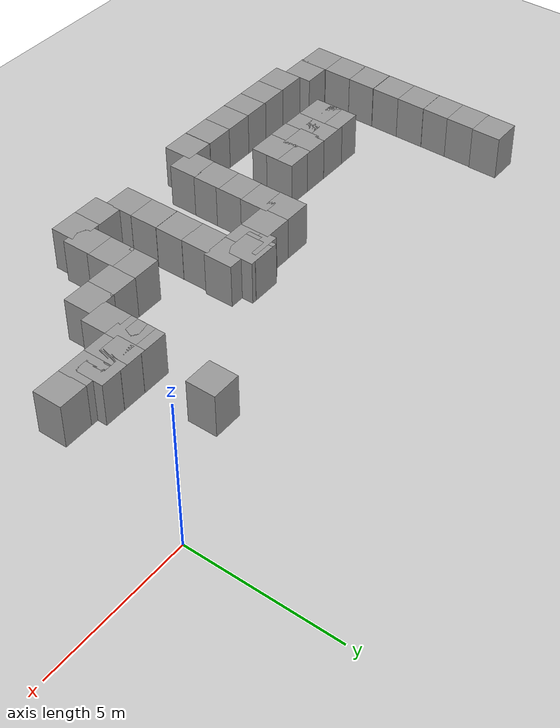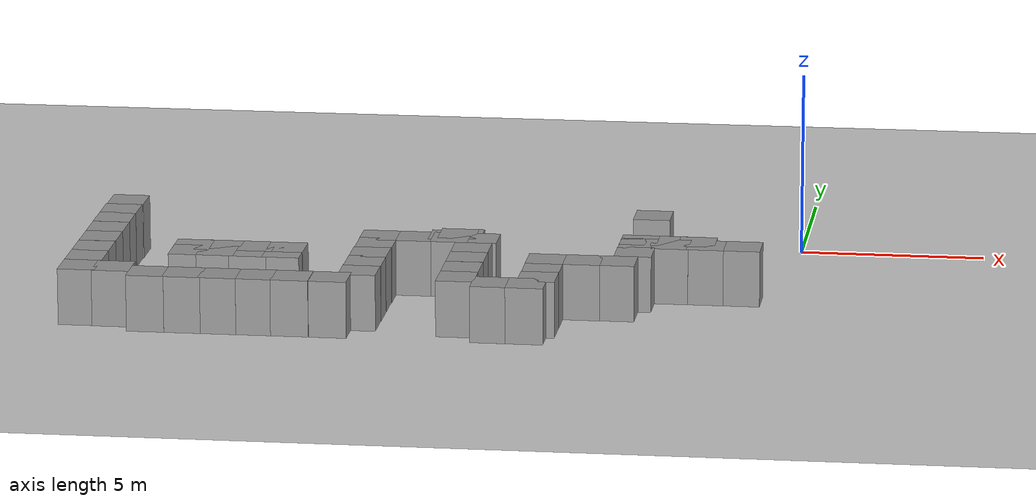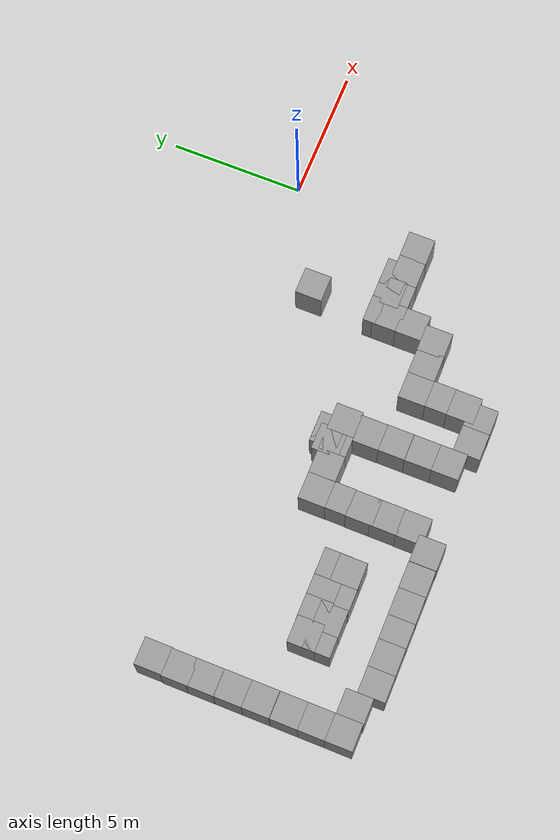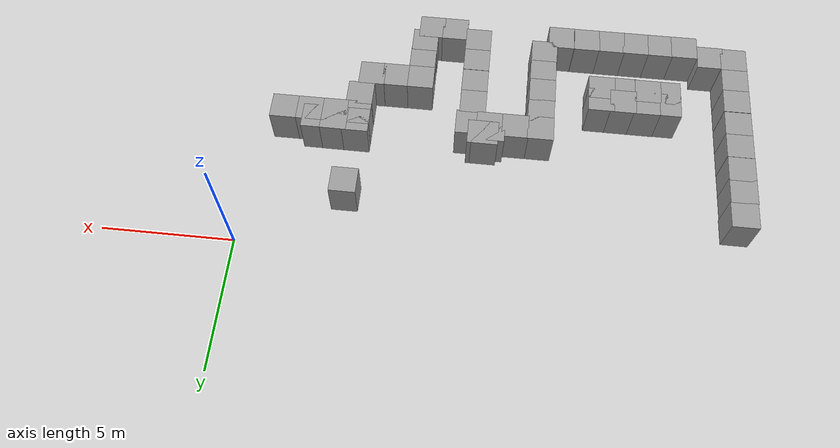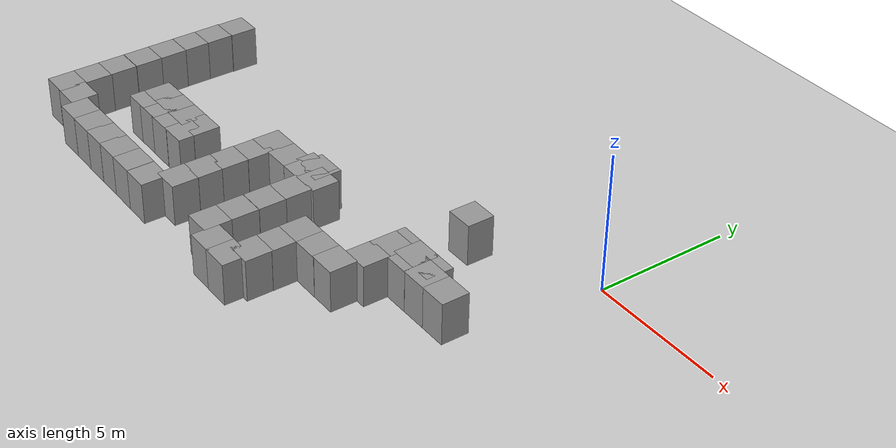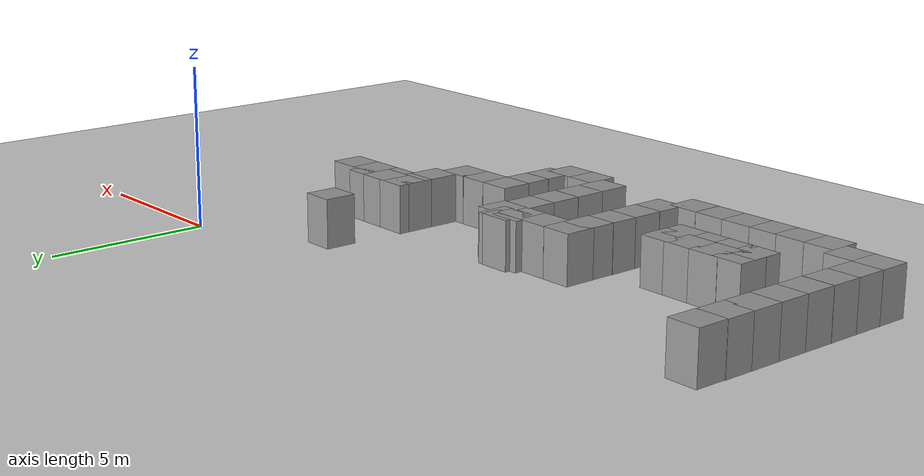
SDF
<sdf version="1.4">
 <world name="default">
  <model name="ground_plane">
   <static>1</static>
   <link name="link">
    <collision name="collision">
     <geometry><plane><normal>0 0 1</normal><size>100 100</size></plane></geometry>
     <surface><friction><ode><mu>100</mu><mu2>50</mu2></ode></friction></surface>
    </collision>
    <visual name="visual">
     <cast_shadows>0</cast_shadows>
     <geometry><plane><normal>0 0 1</normal><size>100 100</size></plane></geometry>
     <material>
      <script><uri>file://media/materials/scripts/gazebo.material</uri><name>Gazebo/Grey</name></script>
     </material>
    </visual>
    <velocity_decay><linear>0</linear><angular>0</angular></velocity_decay>
   </link>
  </model>
  <model name="unit_box_8">
   <pose>-3.98464 -4.80746 0.5 0 0 -0.000671</pose>
   <static>1</static>
   <link name="link">
    <inertial>
     <mass>1</mass>
     <inertia><ixx>1</ixx><ixy>0</ixy><ixz>0</ixz><iyy>1</iyy><iyz>0</iyz><izz>1</izz></inertia>
    </inertial>
    <collision name="collision"><geometry><box><size>1 1 2</size></box></geometry></collision>
    <visual name="visual">
     <geometry><box><size>1 1 2</size></box></geometry>
     <material>
      <script><uri>file://media/materials/scripts/gazebo.material</uri><name>Gazebo/Grey</name></script>
     </material>
    </visual>
    <velocity_decay><linear>0</linear><angular>0</angular></velocity_decay>
   </link>
   <static>0</static>
  </model>
  <model name="unit_box_13">
   <pose>-9.04735 -5.12782 0.5 0 0 -0.000581</pose>
   <static>1</static>
   <link name="link">
    <inertial>
     <mass>1</mass>
     <inertia><ixx>1</ixx><ixy>0</ixy><ixz>0</ixz><iyy>1</iyy><iyz>0</iyz><izz>1</izz></inertia>
    </inertial>
    <collision name="collision"><geometry><box><size>1 1 2</size></box></geometry></collision>
    <visual name="visual">
     <geometry><box><size>1 1 2</size></box></geometry>
     <material>
      <script><uri>file://media/materials/scripts/gazebo.material</uri><name>Gazebo/Grey</name></script>
     </material>
    </visual>
    <velocity_decay><linear>0</linear><angular>0</angular></velocity_decay>
   </link>
   <static>0</static>
  </model>
  <model name="unit_box_15">
   <pose>-18.4176 -4.09266 0.5 0 0 -3.9e-05</pose>
   <static>1</static>
   <link name="link">
    <inertial>
     <mass>1</mass>
     <inertia><ixx>1</ixx><ixy>0</ixy><ixz>0</ixz><iyy>1</iyy><iyz>0</iyz><izz>1</izz></inertia>
    </inertial>
    <collision name="collision"><geometry><box><size>1 1 2</size></box></geometry></collision>
    <visual name="visual">
     <geometry><box><size>1 1 2</size></box></geometry>
     <material>
      <script><uri>file://media/materials/scripts/gazebo.material</uri><name>Gazebo/Grey</name></script>
     </material>
    </visual>
    <velocity_decay><linear>0</linear><angular>0</angular></velocity_decay>
   </link>
   <static>0</static>
  </model>
  <model name="unit_box_17">
   <pose>-12.6647 -9.4969 0.5 0 0 -1.9e-05</pose>
   <static>1</static>
   <link name="link">
    <inertial>
     <mass>1</mass>
     <inertia><ixx>1</ixx><ixy>0</ixy><ixz>0</ixz><iyy>1</iyy><iyz>0</iyz><izz>1</izz></inertia>
    </inertial>
    <collision name="collision"><geometry><box><size>1 1 2</size></box></geometry></collision>
    <visual name="visual">
     <geometry><box><size>1 1 2</size></box></geometry>
     <material>
      <script><uri>file://media/materials/scripts/gazebo.material</uri><name>Gazebo/Grey</name></script>
     </material>
    </visual>
    <velocity_decay><linear>0</linear><angular>0</angular></velocity_decay>
   </link>
   <static>0</static>
  </model>
  <model name="unit_box_22">
   <pose>-3.88829 -2.16624 0.5 0 0 -1.2e-05</pose>
   <static>1</static>
   <link name="link">
    <inertial>
     <mass>1</mass>
     <inertia><ixx>1</ixx><ixy>0</ixy><ixz>0</ixz><iyy>1</iyy><iyz>0</iyz><izz>1</izz></inertia>
    </inertial>
    <collision name="collision"><geometry><box><size>1 1 2</size></box></geometry></collision>
    <visual name="visual">
     <geometry><box><size>1 1 2</size></box></geometry>
     <material>
      <script><uri>file://media/materials/scripts/gazebo.material</uri><name>Gazebo/Grey</name></script>
     </material>
    </visual>
    <velocity_decay><linear>0</linear><angular>0</angular></velocity_decay>
   </link>
   <static>0</static>
  </model>
  <model name="unit_box_23">
   <pose>-8.35425 -7.06216 0.5 0 0 -1e-05</pose>
   <static>1</static>
   <link name="link">
    <inertial>
     <mass>1</mass>
     <inertia><ixx>1</ixx><ixy>0</ixy><ixz>0</ixz><iyy>1</iyy><iyz>0</iyz><izz>1</izz></inertia>
    </inertial>
    <collision name="collision"><geometry><box><size>1 1 2</size></box></geometry></collision>
    <visual name="visual">
     <geometry><box><size>1 1 2</size></box></geometry>
     <material>
      <script><uri>file://media/materials/scripts/gazebo.material</uri><name>Gazebo/Grey</name></script>
     </material>
    </visual>
    <velocity_decay><linear>0</linear><angular>0</angular></velocity_decay>
   </link>
   <static>0</static>
  </model>
  <model name="unit_box_24">
   <pose>-3.98781 -5.14429 0.5 0 0 -1.4e-05</pose>
   <static>1</static>
   <link name="link">
    <inertial>
     <mass>1</mass>
     <inertia><ixx>1</ixx><ixy>0</ixy><ixz>0</ixz><iyy>1</iyy><iyz>0</iyz><izz>1</izz></inertia>
    </inertial>
    <collision name="collision"><geometry><box><size>1 1 2</size></box></geometry></collision>
    <visual name="visual">
     <geometry><box><size>1 1 2</size></box></geometry>
     <material>
      <script><uri>file://media/materials/scripts/gazebo.material</uri><name>Gazebo/Grey</name></script>
     </material>
    </visual>
    <velocity_decay><linear>0</linear><angular>0</angular></velocity_decay>
   </link>
   <static>0</static>
  </model>
  <model name="unit_box_25">
   <pose>-5.25514 -7.02031 0.5 0 0 -1.5e-05</pose>
   <static>1</static>
   <link name="link">
    <inertial>
     <mass>1</mass>
     <inertia><ixx>1</ixx><ixy>0</ixy><ixz>0</ixz><iyy>1</iyy><iyz>0</iyz><izz>1</izz></inertia>
    </inertial>
    <collision name="collision"><geometry><box><size>1 1 2</size></box></geometry></collision>
    <visual name="visual">
     <geometry><box><size>1 1 2</size></box></geometry>
     <material>
      <script><uri>file://media/materials/scripts/gazebo.material</uri><name>Gazebo/Grey</name></script>
     </material>
    </visual>
    <velocity_decay><linear>0</linear><angular>0</angular></velocity_decay>
   </link>
   <static>0</static>
  </model>
  <model name="unit_box_26">
   <pose>-3.99313 -6.04218 0.5 0 0 -1.1e-05</pose>
   <static>1</static>
   <link name="link">
    <inertial>
     <mass>1</mass>
     <inertia><ixx>1</ixx><ixy>0</ixy><ixz>0</ixz><iyy>1</iyy><iyz>0</iyz><izz>1</izz></inertia>
    </inertial>
    <collision name="collision"><geometry><box><size>1 1 2</size></box></geometry></collision>
    <visual name="visual">
     <geometry><box><size>1 1 2</size></box></geometry>
     <material>
      <script><uri>file://media/materials/scripts/gazebo.material</uri><name>Gazebo/Grey</name></script>
     </material>
    </visual>
    <velocity_decay><linear>0</linear><angular>0</angular></velocity_decay>
   </link>
   <static>0</static>
  </model>
  <model name="unit_box_27">
   <pose>-6.24567 -7.02385 0.5 0 0 -1e-05</pose>
   <static>1</static>
   <link name="link">
    <inertial>
     <mass>1</mass>
     <inertia><ixx>1</ixx><ixy>0</ixy><ixz>0</ixz><iyy>1</iyy><iyz>0</iyz><izz>1</izz></inertia>
    </inertial>
    <collision name="collision"><geometry><box><size>1 1 2</size></box></geometry></collision>
    <visual name="visual">
     <geometry><box><size>1 1 2</size></box></geometry>
     <material>
      <script><uri>file://media/materials/scripts/gazebo.material</uri><name>Gazebo/Grey</name></script>
     </material>
    </visual>
    <velocity_decay><linear>0</linear><angular>0</angular></velocity_decay>
   </link>
   <static>0</static>
  </model>
  <model name="unit_box_28">
   <pose>-3.10006 -5.14863 0.5 0 0 -1.1e-05</pose>
   <static>1</static>
   <link name="link">
    <inertial>
     <mass>1</mass>
     <inertia><ixx>1</ixx><ixy>0</ixy><ixz>0</ixz><iyy>1</iyy><iyz>0</iyz><izz>1</izz></inertia>
    </inertial>
    <collision name="collision"><geometry><box><size>1 1 2</size></box></geometry></collision>
    <visual name="visual">
     <geometry><box><size>1 1 2</size></box></geometry>
     <material>
      <script><uri>file://media/materials/scripts/gazebo.material</uri><name>Gazebo/Grey</name></script>
     </material>
    </visual>
    <velocity_decay><linear>0</linear><angular>0</angular></velocity_decay>
   </link>
   <static>0</static>
  </model>
  <model name="unit_box_35">
   <pose>-4.34133 -7.01322 0.5 0 0 -1.5e-05</pose>
   <static>1</static>
   <link name="link">
    <inertial>
     <mass>1</mass>
     <inertia><ixx>1</ixx><ixy>0</ixy><ixz>0</ixz><iyy>1</iyy><iyz>0</iyz><izz>1</izz></inertia>
    </inertial>
    <collision name="collision"><geometry><box><size>1 1 2</size></box></geometry></collision>
    <visual name="visual">
     <geometry><box><size>1 1 2</size></box></geometry>
     <material>
      <script><uri>file://media/materials/scripts/gazebo.material</uri><name>Gazebo/Grey</name></script>
     </material>
    </visual>
    <velocity_decay><linear>0</linear><angular>0</angular></velocity_decay>
   </link>
   <static>0</static>
  </model>
  <model name="unit_box_36">
   <pose>-8.74356 -4.72467 0.5 0 0 -1.5e-05</pose>
   <static>1</static>
   <link name="link">
    <inertial>
     <mass>1</mass>
     <inertia><ixx>1</ixx><ixy>0</ixy><ixz>0</ixz><iyy>1</iyy><iyz>0</iyz><izz>1</izz></inertia>
    </inertial>
    <collision name="collision"><geometry><box><size>1 1 2</size></box></geometry></collision>
    <visual name="visual">
     <geometry><box><size>1 1 2</size></box></geometry>
     <material>
      <script><uri>file://media/materials/scripts/gazebo.material</uri><name>Gazebo/Grey</name></script>
     </material>
    </visual>
    <velocity_decay><linear>0</linear><angular>0</angular></velocity_decay>
   </link>
   <static>0</static>
  </model>
  <model name="unit_box_37">
   <pose>-2.15261 -5.14539 0.5 0 0 -1.4e-05</pose>
   <static>1</static>
   <link name="link">
    <inertial>
     <mass>1</mass>
     <inertia><ixx>1</ixx><ixy>0</ixy><ixz>0</ixz><iyy>1</iyy><iyz>0</iyz><izz>1</izz></inertia>
    </inertial>
    <collision name="collision"><geometry><box><size>1 1 2</size></box></geometry></collision>
    <visual name="visual">
     <geometry><box><size>1 1 2</size></box></geometry>
     <material>
      <script><uri>file://media/materials/scripts/gazebo.material</uri><name>Gazebo/Grey</name></script>
     </material>
    </visual>
    <velocity_decay><linear>0</linear><angular>0</angular></velocity_decay>
   </link>
   <static>0</static>
  </model>
  <model name="unit_box_42">
   <pose>-18.4169 -3.16567 0.5 0 -0 0.001796</pose>
   <static>1</static>
   <link name="link">
    <inertial>
     <mass>1</mass>
     <inertia><ixx>1</ixx><ixy>0</ixy><ixz>0</ixz><iyy>1</iyy><iyz>0</iyz><izz>1</izz></inertia>
    </inertial>
    <collision name="collision"><geometry><box><size>1 1 2</size></box></geometry></collision>
    <visual name="visual">
     <geometry><box><size>1 1 2</size></box></geometry>
     <material>
      <script><uri>file://media/materials/scripts/gazebo.material</uri><name>Gazebo/Grey</name></script>
     </material>
    </visual>
    <velocity_decay><linear>0</linear><angular>0</angular></velocity_decay>
   </link>
   <static>0</static>
  </model>
  <model name="unit_box_43">
   <pose>-18.3967 -2.18667 0.5 0 -0 0.001375</pose>
   <static>1</static>
   <link name="link">
    <inertial>
     <mass>1</mass>
     <inertia><ixx>1</ixx><ixy>0</ixy><ixz>0</ixz><iyy>1</iyy><iyz>0</iyz><izz>1</izz></inertia>
    </inertial>
    <collision name="collision"><geometry><box><size>1 1 2</size></box></geometry></collision>
    <visual name="visual">
     <geometry><box><size>1 1 2</size></box></geometry>
     <material>
      <script><uri>file://media/materials/scripts/gazebo.material</uri><name>Gazebo/Grey</name></script>
     </material>
    </visual>
    <velocity_decay><linear>0</linear><angular>0</angular></velocity_decay>
   </link>
   <static>0</static>
  </model>
  <model name="unit_box_223">
   <pose>-14.9887 -6.66241 0.5 0 -0 1e-06</pose>
   <static>1</static>
   <link name="link">
    <inertial>
     <mass>1</mass>
     <inertia><ixx>1</ixx><ixy>0</ixy><ixz>0</ixz><iyy>1</iyy><iyz>0</iyz><izz>1</izz></inertia>
    </inertial>
    <collision name="collision"><geometry><box><size>1 1 2</size></box></geometry></collision>
    <visual name="visual">
     <geometry><box><size>1 1 2</size></box></geometry>
     <material>
      <script><uri>file://media/materials/scripts/gazebo.material</uri><name>Gazebo/Grey</name></script>
     </material>
    </visual>
    <velocity_decay><linear>0</linear><angular>0</angular></velocity_decay>
   </link>
   <static>0</static>
  </model>
  <model name="unit_box_227">
   <pose>-10.9783 -5.13219 0.5 0 0 -4e-06</pose>
   <static>1</static>
   <link name="link">
    <inertial>
     <mass>1</mass>
     <inertia><ixx>1</ixx><ixy>0</ixy><ixz>0</ixz><iyy>1</iyy><iyz>0</iyz><izz>1</izz></inertia>
    </inertial>
    <collision name="collision"><geometry><box><size>1 1 2</size></box></geometry></collision>
    <visual name="visual">
     <geometry><box><size>1 1 2</size></box></geometry>
     <material>
      <script><uri>file://media/materials/scripts/gazebo.material</uri><name>Gazebo/Grey</name></script>
     </material>
    </visual>
    <velocity_decay><linear>0</linear><angular>0</angular></velocity_decay>
   </link>
   <static>0</static>
  </model>
  <model name="unit_box_228">
   <pose>-10.9701 -5.91289 0.5 0 0 -4e-06</pose>
   <static>1</static>
   <link name="link">
    <inertial>
     <mass>1</mass>
     <inertia><ixx>1</ixx><ixy>0</ixy><ixz>0</ixz><iyy>1</iyy><iyz>0</iyz><izz>1</izz></inertia>
    </inertial>
    <collision name="collision"><geometry><box><size>1 1 2</size></box></geometry></collision>
    <visual name="visual">
     <geometry><box><size>1 1 2</size></box></geometry>
     <material>
      <script><uri>file://media/materials/scripts/gazebo.material</uri><name>Gazebo/Grey</name></script>
     </material>
    </visual>
    <velocity_decay><linear>0</linear><angular>0</angular></velocity_decay>
   </link>
   <static>0</static>
  </model>
  <model name="unit_box_229">
   <pose>-10.9848 -7.77589 0.5 0 0 -3e-06</pose>
   <static>1</static>
   <link name="link">
    <inertial>
     <mass>1</mass>
     <inertia><ixx>1</ixx><ixy>0</ixy><ixz>0</ixz><iyy>1</iyy><iyz>0</iyz><izz>1</izz></inertia>
    </inertial>
    <collision name="collision"><geometry><box><size>1 1 2</size></box></geometry></collision>
    <visual name="visual">
     <geometry><box><size>1 1 2</size></box></geometry>
     <material>
      <script><uri>file://media/materials/scripts/gazebo.material</uri><name>Gazebo/Grey</name></script>
     </material>
    </visual>
    <velocity_decay><linear>0</linear><angular>0</angular></velocity_decay>
   </link>
   <static>0</static>
  </model>
  <model name="unit_box_232">
   <pose>-10.0212 -5.12862 0.5 0 0 -5e-06</pose>
   <static>1</static>
   <link name="link">
    <inertial>
     <mass>1</mass>
     <inertia><ixx>1</ixx><ixy>0</ixy><ixz>0</ixz><iyy>1</iyy><iyz>0</iyz><izz>1</izz></inertia>
    </inertial>
    <collision name="collision"><geometry><box><size>1 1 2</size></box></geometry></collision>
    <visual name="visual">
     <geometry><box><size>1 1 2</size></box></geometry>
     <material>
      <script><uri>file://media/materials/scripts/gazebo.material</uri><name>Gazebo/Grey</name></script>
     </material>
    </visual>
    <velocity_decay><linear>0</linear><angular>0</angular></velocity_decay>
   </link>
   <static>0</static>
  </model>
  <model name="unit_box_233">
   <pose>-8.2589 -5.12275 0.5 0 0 -5e-06</pose>
   <static>1</static>
   <link name="link">
    <inertial>
     <mass>1</mass>
     <inertia><ixx>1</ixx><ixy>0</ixy><ixz>0</ixz><iyy>1</iyy><iyz>0</iyz><izz>1</izz></inertia>
    </inertial>
    <collision name="collision"><geometry><box><size>1 1 2</size></box></geometry></collision>
    <visual name="visual">
     <geometry><box><size>1 1 2</size></box></geometry>
     <material>
      <script><uri>file://media/materials/scripts/gazebo.material</uri><name>Gazebo/Grey</name></script>
     </material>
    </visual>
    <velocity_decay><linear>0</linear><angular>0</angular></velocity_decay>
   </link>
   <static>0</static>
  </model>
  <model name="unit_box_234">
   <pose>-8.36081 -6.08064 0.5 0 0 -5e-06</pose>
   <static>1</static>
   <link name="link">
    <inertial>
     <mass>1</mass>
     <inertia><ixx>1</ixx><ixy>0</ixy><ixz>0</ixz><iyy>1</iyy><iyz>0</iyz><izz>1</izz></inertia>
    </inertial>
    <collision name="collision"><geometry><box><size>1 1 2</size></box></geometry></collision>
    <visual name="visual">
     <geometry><box><size>1 1 2</size></box></geometry>
     <material>
      <script><uri>file://media/materials/scripts/gazebo.material</uri><name>Gazebo/Grey</name></script>
     </material>
    </visual>
    <velocity_decay><linear>0</linear><angular>0</angular></velocity_decay>
   </link>
   <static>0</static>
  </model>
  <model name="unit_box_235">
   <pose>-15.7894 -6.67048 0.5 0 -0 1e-06</pose>
   <static>1</static>
   <link name="link">
    <inertial>
     <mass>1</mass>
     <inertia><ixx>1</ixx><ixy>0</ixy><ixz>0</ixz><iyy>1</iyy><iyz>0</iyz><izz>1</izz></inertia>
    </inertial>
    <collision name="collision"><geometry><box><size>1 1 2</size></box></geometry></collision>
    <visual name="visual">
     <geometry><box><size>1 1 2</size></box></geometry>
     <material>
      <script><uri>file://media/materials/scripts/gazebo.material</uri><name>Gazebo/Grey</name></script>
     </material>
    </visual>
    <velocity_decay><linear>0</linear><angular>0</angular></velocity_decay>
   </link>
   <static>0</static>
  </model>
  <model name="unit_box_236">
   <pose>-13.2667 -7.23484 0.5 0 -0 1e-06</pose>
   <static>1</static>
   <link name="link">
    <inertial>
     <mass>1</mass>
     <inertia><ixx>1</ixx><ixy>0</ixy><ixz>0</ixz><iyy>1</iyy><iyz>0</iyz><izz>1</izz></inertia>
    </inertial>
    <collision name="collision"><geometry><box><size>1 1 2</size></box></geometry></collision>
    <visual name="visual">
     <geometry><box><size>1 1 2</size></box></geometry>
     <material>
      <script><uri>file://media/materials/scripts/gazebo.material</uri><name>Gazebo/Grey</name></script>
     </material>
    </visual>
    <velocity_decay><linear>0</linear><angular>0</angular></velocity_decay>
   </link>
   <static>0</static>
  </model>
  <model name="unit_box_237">
   <pose>-8.89915 -4.72063 0.5 0 -0 1e-06</pose>
   <static>1</static>
   <link name="link">
    <inertial>
     <mass>1</mass>
     <inertia><ixx>1</ixx><ixy>0</ixy><ixz>0</ixz><iyy>1</iyy><iyz>0</iyz><izz>1</izz></inertia>
    </inertial>
    <collision name="collision"><geometry><box><size>1 1 2</size></box></geometry></collision>
    <visual name="visual">
     <geometry><box><size>1 1 2</size></box></geometry>
     <material>
      <script><uri>file://media/materials/scripts/gazebo.material</uri><name>Gazebo/Grey</name></script>
     </material>
    </visual>
    <velocity_decay><linear>0</linear><angular>0</angular></velocity_decay>
   </link>
   <static>0</static>
  </model>
  <model name="unit_box_238">
   <pose>-2.42621 -4.81701 0.5 0 -0 2e-06</pose>
   <static>1</static>
   <link name="link">
    <inertial>
     <mass>1</mass>
     <inertia><ixx>1</ixx><ixy>0</ixy><ixz>0</ixz><iyy>1</iyy><iyz>0</iyz><izz>1</izz></inertia>
    </inertial>
    <collision name="collision"><geometry><box><size>1 1 2</size></box></geometry></collision>
    <visual name="visual">
     <geometry><box><size>1 1 2</size></box></geometry>
     <material>
      <script><uri>file://media/materials/scripts/gazebo.material</uri><name>Gazebo/Grey</name></script>
     </material>
    </visual>
    <velocity_decay><linear>0</linear><angular>0</angular></velocity_decay>
   </link>
   <static>0</static>
  </model>
  <model name="unit_box_239">
   <pose>-9.13733 -4.88746 0.499999 3e-06 -0 2e-06</pose>
   <static>1</static>
   <link name="link">
    <inertial>
     <mass>1</mass>
     <inertia><ixx>1</ixx><ixy>0</ixy><ixz>0</ixz><iyy>1</iyy><iyz>0</iyz><izz>1</izz></inertia>
    </inertial>
    <collision name="collision"><geometry><box><size>1 1 2</size></box></geometry></collision>
    <visual name="visual">
     <geometry><box><size>1 1 2</size></box></geometry>
     <material>
      <script><uri>file://media/materials/scripts/gazebo.material</uri><name>Gazebo/Grey</name></script>
     </material>
    </visual>
    <velocity_decay><linear>0</linear><angular>0</angular></velocity_decay>
   </link>
   <static>0</static>
  </model>
  <model name="unit_box_240">
   <pose>-11.6544 -9.50215 0.5 0 0 -3e-06</pose>
   <static>1</static>
   <link name="link">
    <inertial>
     <mass>1</mass>
     <inertia><ixx>1</ixx><ixy>0</ixy><ixz>0</ixz><iyy>1</iyy><iyz>0</iyz><izz>1</izz></inertia>
    </inertial>
    <collision name="collision"><geometry><box><size>1 1 2</size></box></geometry></collision>
    <visual name="visual">
     <geometry><box><size>1 1 2</size></box></geometry>
     <material>
      <script><uri>file://media/materials/scripts/gazebo.material</uri><name>Gazebo/Grey</name></script>
     </material>
    </visual>
    <velocity_decay><linear>0</linear><angular>0</angular></velocity_decay>
   </link>
   <static>0</static>
  </model>
  <model name="unit_box_246">
   <pose>-18.4134 -5.09618 0.5 0 0 -3e-06</pose>
   <static>1</static>
   <link name="link">
    <inertial>
     <mass>1</mass>
     <inertia><ixx>1</ixx><ixy>0</ixy><ixz>0</ixz><iyy>1</iyy><iyz>0</iyz><izz>1</izz></inertia>
    </inertial>
    <collision name="collision"><geometry><box><size>1 1 2</size></box></geometry></collision>
    <visual name="visual">
     <geometry><box><size>1 1 2</size></box></geometry>
     <material>
      <script><uri>file://media/materials/scripts/gazebo.material</uri><name>Gazebo/Grey</name></script>
     </material>
    </visual>
    <velocity_decay><linear>0</linear><angular>0</angular></velocity_decay>
   </link>
   <static>0</static>
  </model>
  <model name="unit_box_247">
   <pose>-18.412 -6.09549 0.5 0 0 -1.4e-05</pose>
   <static>1</static>
   <link name="link">
    <inertial>
     <mass>1</mass>
     <inertia><ixx>1</ixx><ixy>0</ixy><ixz>0</ixz><iyy>1</iyy><iyz>0</iyz><izz>1</izz></inertia>
    </inertial>
    <collision name="collision"><geometry><box><size>1 1 2</size></box></geometry></collision>
    <visual name="visual">
     <geometry><box><size>1 1 2</size></box></geometry>
     <material>
      <script><uri>file://media/materials/scripts/gazebo.material</uri><name>Gazebo/Grey</name></script>
     </material>
    </visual>
    <velocity_decay><linear>0</linear><angular>0</angular></velocity_decay>
   </link>
   <static>0</static>
  </model>
  <model name="unit_box_248">
   <pose>-18.4125 -7.10923 0.5 0 0 -1.6e-05</pose>
   <static>1</static>
   <link name="link">
    <inertial>
     <mass>1</mass>
     <inertia><ixx>1</ixx><ixy>0</ixy><ixz>0</ixz><iyy>1</iyy><iyz>0</iyz><izz>1</izz></inertia>
    </inertial>
    <collision name="collision"><geometry><box><size>1 1 2</size></box></geometry></collision>
    <visual name="visual">
     <geometry><box><size>1 1 2</size></box></geometry>
     <material>
      <script><uri>file://media/materials/scripts/gazebo.material</uri><name>Gazebo/Grey</name></script>
     </material>
    </visual>
    <velocity_decay><linear>0</linear><angular>0</angular></velocity_decay>
   </link>
   <static>0</static>
  </model>
  <model name="unit_box_249">
   <pose>-18.4108 -8.0833 0.5 0 0 -1.3e-05</pose>
   <static>1</static>
   <link name="link">
    <inertial>
     <mass>1</mass>
     <inertia><ixx>1</ixx><ixy>0</ixy><ixz>0</ixz><iyy>1</iyy><iyz>0</iyz><izz>1</izz></inertia>
    </inertial>
    <collision name="collision"><geometry><box><size>1 1 2</size></box></geometry></collision>
    <visual name="visual">
     <geometry><box><size>1 1 2</size></box></geometry>
     <material>
      <script><uri>file://media/materials/scripts/gazebo.material</uri><name>Gazebo/Grey</name></script>
     </material>
    </visual>
    <velocity_decay><linear>0</linear><angular>0</angular></velocity_decay>
   </link>
   <static>0</static>
  </model>
  <model name="unit_box_251">
   <pose>-18.4112 -9.08074 0.5 1.61559e-27 -1e-06 -1.2e-05</pose>
   <static>1</static>
   <link name="link">
    <inertial>
     <mass>1</mass>
     <inertia><ixx>1</ixx><ixy>0</ixy><ixz>0</ixz><iyy>1</iyy><iyz>0</iyz><izz>1</izz></inertia>
    </inertial>
    <collision name="collision"><geometry><box><size>1 1 2</size></box></geometry></collision>
    <visual name="visual">
     <geometry><box><size>1 1 2</size></box></geometry>
     <material>
      <script><uri>file://media/materials/scripts/gazebo.material</uri><name>Gazebo/Grey</name></script>
     </material>
    </visual>
    <velocity_decay><linear>0</linear><angular>0</angular></velocity_decay>
   </link>
   <static>0</static>
  </model>
  <model name="unit_box_252">
   <pose>-17.5001 -9.10227 0.5 0 0 -1.1e-05</pose>
   <static>1</static>
   <link name="link">
    <inertial>
     <mass>1</mass>
     <inertia><ixx>1</ixx><ixy>0</ixy><ixz>0</ixz><iyy>1</iyy><iyz>0</iyz><izz>1</izz></inertia>
    </inertial>
    <collision name="collision"><geometry><box><size>1 1 2</size></box></geometry></collision>
    <visual name="visual">
     <geometry><box><size>1 1 2</size></box></geometry>
     <material>
      <script><uri>file://media/materials/scripts/gazebo.material</uri><name>Gazebo/Grey</name></script>
     </material>
    </visual>
    <velocity_decay><linear>0</linear><angular>0</angular></velocity_decay>
   </link>
   <static>0</static>
  </model>
  <model name="unit_box_253">
   <pose>-16.5026 -9.50142 0.5 0 0 -1e-05</pose>
   <static>1</static>
   <link name="link">
    <inertial>
     <mass>1</mass>
     <inertia><ixx>1</ixx><ixy>0</ixy><ixz>0</ixz><iyy>1</iyy><iyz>0</iyz><izz>1</izz></inertia>
    </inertial>
    <collision name="collision"><geometry><box><size>1 1 2</size></box></geometry></collision>
    <visual name="visual">
     <geometry><box><size>1 1 2</size></box></geometry>
     <material>
      <script><uri>file://media/materials/scripts/gazebo.material</uri><name>Gazebo/Grey</name></script>
     </material>
    </visual>
    <velocity_decay><linear>0</linear><angular>0</angular></velocity_decay>
   </link>
   <static>0</static>
  </model>
  <model name="unit_box_254">
   <pose>-15.5331 -9.49946 0.5 0 0 -1e-05</pose>
   <static>1</static>
   <link name="link">
    <inertial>
     <mass>1</mass>
     <inertia><ixx>1</ixx><ixy>0</ixy><ixz>0</ixz><iyy>1</iyy><iyz>0</iyz><izz>1</izz></inertia>
    </inertial>
    <collision name="collision"><geometry><box><size>1 1 2</size></box></geometry></collision>
    <visual name="visual">
     <geometry><box><size>1 1 2</size></box></geometry>
     <material>
      <script><uri>file://media/materials/scripts/gazebo.material</uri><name>Gazebo/Grey</name></script>
     </material>
    </visual>
    <velocity_decay><linear>0</linear><angular>0</angular></velocity_decay>
   </link>
   <static>0</static>
  </model>
  <model name="unit_box_255">
   <pose>-14.5846 -9.49887 0.5 0 0 -8e-06</pose>
   <static>1</static>
   <link name="link">
    <inertial>
     <mass>1</mass>
     <inertia><ixx>1</ixx><ixy>0</ixy><ixz>0</ixz><iyy>1</iyy><iyz>0</iyz><izz>1</izz></inertia>
    </inertial>
    <collision name="collision"><geometry><box><size>1 1 2</size></box></geometry></collision>
    <visual name="visual">
     <geometry><box><size>1 1 2</size></box></geometry>
     <material>
      <script><uri>file://media/materials/scripts/gazebo.material</uri><name>Gazebo/Grey</name></script>
     </material>
    </visual>
    <velocity_decay><linear>0</linear><angular>0</angular></velocity_decay>
   </link>
   <static>0</static>
  </model>
  <model name="unit_box_256">
   <pose>-13.6431 -9.49683 0.5 0 0 -7e-06</pose>
   <static>1</static>
   <link name="link">
    <inertial>
     <mass>1</mass>
     <inertia><ixx>1</ixx><ixy>0</ixy><ixz>0</ixz><iyy>1</iyy><iyz>0</iyz><izz>1</izz></inertia>
    </inertial>
    <collision name="collision"><geometry><box><size>1 1 2</size></box></geometry></collision>
    <visual name="visual">
     <geometry><box><size>1 1 2</size></box></geometry>
     <material>
      <script><uri>file://media/materials/scripts/gazebo.material</uri><name>Gazebo/Grey</name></script>
     </material>
    </visual>
    <velocity_decay><linear>0</linear><angular>0</angular></velocity_decay>
   </link>
   <static>0</static>
  </model>
  <model name="unit_box_257">
   <pose>-10.9942 -8.73874 0.5 0 0 -7e-06</pose>
   <static>1</static>
   <link name="link">
    <inertial>
     <mass>1</mass>
     <inertia><ixx>1</ixx><ixy>0</ixy><ixz>0</ixz><iyy>1</iyy><iyz>0</iyz><izz>1</izz></inertia>
    </inertial>
    <collision name="collision"><geometry><box><size>1 1 2</size></box></geometry></collision>
    <visual name="visual">
     <geometry><box><size>1 1 2</size></box></geometry>
     <material>
      <script><uri>file://media/materials/scripts/gazebo.material</uri><name>Gazebo/Grey</name></script>
     </material>
    </visual>
    <velocity_decay><linear>0</linear><angular>0</angular></velocity_decay>
   </link>
   <static>0</static>
  </model>
  <model name="unit_box_258">
   <pose>-10.9831 -6.88794 0.5 0 0 -5e-06</pose>
   <static>1</static>
   <link name="link">
    <inertial>
     <mass>1</mass>
     <inertia><ixx>1</ixx><ixy>0</ixy><ixz>0</ixz><iyy>1</iyy><iyz>0</iyz><izz>1</izz></inertia>
    </inertial>
    <collision name="collision"><geometry><box><size>1 1 2</size></box></geometry></collision>
    <visual name="visual">
     <geometry><box><size>1 1 2</size></box></geometry>
     <material>
      <script><uri>file://media/materials/scripts/gazebo.material</uri><name>Gazebo/Grey</name></script>
     </material>
    </visual>
    <velocity_decay><linear>0</linear><angular>0</angular></velocity_decay>
   </link>
   <static>0</static>
  </model>
  <model name="unit_box_259">
   <pose>-7.39068 -9.50966 0.5 0 0 -5e-06</pose>
   <static>1</static>
   <link name="link">
    <inertial>
     <mass>1</mass>
     <inertia><ixx>1</ixx><ixy>0</ixy><ixz>0</ixz><iyy>1</iyy><iyz>0</iyz><izz>1</izz></inertia>
    </inertial>
    <collision name="collision"><geometry><box><size>1 1 2</size></box></geometry></collision>
    <visual name="visual">
     <geometry><box><size>1 1 2</size></box></geometry>
     <material>
      <script><uri>file://media/materials/scripts/gazebo.material</uri><name>Gazebo/Grey</name></script>
     </material>
    </visual>
    <velocity_decay><linear>0</linear><angular>0</angular></velocity_decay>
   </link>
   <static>0</static>
  </model>
  <model name="unit_box_260">
   <pose>-8.35545 -8.06903 0.499989 -3e-06 -0 -7e-06</pose>
   <static>1</static>
   <link name="link">
    <inertial>
     <mass>1</mass>
     <inertia><ixx>1</ixx><ixy>0</ixy><ixz>0</ixz><iyy>1</iyy><iyz>0</iyz><izz>1</izz></inertia>
    </inertial>
    <collision name="collision"><geometry><box><size>1 1 2</size></box></geometry></collision>
    <visual name="visual">
     <geometry><box><size>1 1 2</size></box></geometry>
     <material>
      <script><uri>file://media/materials/scripts/gazebo.material</uri><name>Gazebo/Grey</name></script>
     </material>
    </visual>
    <velocity_decay><linear>0</linear><angular>0</angular></velocity_decay>
   </link>
   <static>0</static>
  </model>
  <model name="unit_box_261">
   <pose>-8.35299 -9.06152 0.500001 2e-06 3.23117e-27 -7e-06</pose>
   <static>1</static>
   <link name="link">
    <inertial>
     <mass>1</mass>
     <inertia><ixx>1</ixx><ixy>0</ixy><ixz>0</ixz><iyy>1</iyy><iyz>0</iyz><izz>1</izz></inertia>
    </inertial>
    <collision name="collision"><geometry><box><size>1 1 2</size></box></geometry></collision>
    <visual name="visual">
     <geometry><box><size>1 1 2</size></box></geometry>
     <material>
      <script><uri>file://media/materials/scripts/gazebo.material</uri><name>Gazebo/Grey</name></script>
     </material>
    </visual>
    <velocity_decay><linear>0</linear><angular>0</angular></velocity_decay>
   </link>
   <static>0</static>
  </model>
  <model name="unit_box_262">
   <pose>-6.46344 -9.51386 0.5 0 0 -1.1e-05</pose>
   <static>1</static>
   <link name="link">
    <inertial>
     <mass>1</mass>
     <inertia><ixx>1</ixx><ixy>0</ixy><ixz>0</ixz><iyy>1</iyy><iyz>0</iyz><izz>1</izz></inertia>
    </inertial>
    <collision name="collision"><geometry><box><size>1 1 2</size></box></geometry></collision>
    <visual name="visual">
     <geometry><box><size>1 1 2</size></box></geometry>
     <material>
      <script><uri>file://media/materials/scripts/gazebo.material</uri><name>Gazebo/Grey</name></script>
     </material>
    </visual>
    <velocity_decay><linear>0</linear><angular>0</angular></velocity_decay>
   </link>
   <static>0</static>
  </model>
  <model name="unit_box_263">
   <pose>-6.23712 -7.89776 0.499998 3e-06 -0 -1.1e-05</pose>
   <static>1</static>
   <link name="link">
    <inertial>
     <mass>1</mass>
     <inertia><ixx>1</ixx><ixy>0</ixy><ixz>0</ixz><iyy>1</iyy><iyz>0</iyz><izz>1</izz></inertia>
    </inertial>
    <collision name="collision"><geometry><box><size>1 1 2</size></box></geometry></collision>
    <visual name="visual">
     <geometry><box><size>1 1 2</size></box></geometry>
     <material>
      <script><uri>file://media/materials/scripts/gazebo.material</uri><name>Gazebo/Grey</name></script>
     </material>
    </visual>
    <velocity_decay><linear>0</linear><angular>0</angular></velocity_decay>
   </link>
   <static>0</static>
  </model>
  <model name="unit_box_264">
   <pose>-6.24313 -8.83653 0.5 0 0 -1.1e-05</pose>
   <static>1</static>
   <link name="link">
    <inertial>
     <mass>1</mass>
     <inertia><ixx>1</ixx><ixy>0</ixy><ixz>0</ixz><iyy>1</iyy><iyz>0</iyz><izz>1</izz></inertia>
    </inertial>
    <collision name="collision"><geometry><box><size>1 1 2</size></box></geometry></collision>
    <visual name="visual">
     <geometry><box><size>1 1 2</size></box></geometry>
     <material>
      <script><uri>file://media/materials/scripts/gazebo.material</uri><name>Gazebo/Grey</name></script>
     </material>
    </visual>
    <velocity_decay><linear>0</linear><angular>0</angular></velocity_decay>
   </link>
   <static>0</static>
  </model>
  <model name="unit_box_265">
   <pose>-1.17645 -5.14481 0.500001 2e-06 -0 -1.1e-05</pose>
   <static>1</static>
   <link name="link">
    <inertial>
     <mass>1</mass>
     <inertia><ixx>1</ixx><ixy>0</ixy><ixz>0</ixz><iyy>1</iyy><iyz>0</iyz><izz>1</izz></inertia>
    </inertial>
    <collision name="collision"><geometry><box><size>1 1 2</size></box></geometry></collision>
    <visual name="visual">
     <geometry><box><size>1 1 2</size></box></geometry>
     <material>
      <script><uri>file://media/materials/scripts/gazebo.material</uri><name>Gazebo/Grey</name></script>
     </material>
    </visual>
    <velocity_decay><linear>0</linear><angular>0</angular></velocity_decay>
   </link>
   <static>0</static>
  </model>
  <model name="unit_box_268">
   <pose>-3.14752 -4.81201 0.500001 1e-06 8.07794e-28 -7e-06</pose>
   <static>1</static>
   <link name="link">
    <inertial>
     <mass>1</mass>
     <inertia><ixx>1</ixx><ixy>0</ixy><ixz>0</ixz><iyy>1</iyy><iyz>0</iyz><izz>1</izz></inertia>
    </inertial>
    <collision name="collision"><geometry><box><size>1 1 2</size></box></geometry></collision>
    <visual name="visual">
     <geometry><box><size>1 1 2</size></box></geometry>
     <material>
      <script><uri>file://media/materials/scripts/gazebo.material</uri><name>Gazebo/Grey</name></script>
     </material>
    </visual>
    <velocity_decay><linear>0</linear><angular>0</angular></velocity_decay>
   </link>
   <static>0</static>
  </model>
  <model name="unit_box_269">
   <pose>-15.0369 -7.23047 0.5 0 0 -1e-05</pose>
   <static>1</static>
   <link name="link">
    <inertial>
     <mass>1</mass>
     <inertia><ixx>1</ixx><ixy>0</ixy><ixz>0</ixz><iyy>1</iyy><iyz>0</iyz><izz>1</izz></inertia>
    </inertial>
    <collision name="collision"><geometry><box><size>1 1 2</size></box></geometry></collision>
    <visual name="visual">
     <geometry><box><size>1 1 2</size></box></geometry>
     <material>
      <script><uri>file://media/materials/scripts/gazebo.material</uri><name>Gazebo/Grey</name></script>
     </material>
    </visual>
    <velocity_decay><linear>0</linear><angular>0</angular></velocity_decay>
   </link>
   <static>0</static>
  </model>
  <model name="unit_box_270">
   <pose>-15.7845 -7.22673 0.5 0 0 -1e-05</pose>
   <static>1</static>
   <link name="link">
    <inertial>
     <mass>1</mass>
     <inertia><ixx>1</ixx><ixy>0</ixy><ixz>0</ixz><iyy>1</iyy><iyz>0</iyz><izz>1</izz></inertia>
    </inertial>
    <collision name="collision"><geometry><box><size>1 1 2</size></box></geometry></collision>
    <visual name="visual">
     <geometry><box><size>1 1 2</size></box></geometry>
     <material>
      <script><uri>file://media/materials/scripts/gazebo.material</uri><name>Gazebo/Grey</name></script>
     </material>
    </visual>
    <velocity_decay><linear>0</linear><angular>0</angular></velocity_decay>
   </link>
   <static>0</static>
  </model>
  <model name="unit_box_273">
   <pose>-13.2596 -6.66752 0.5 0 0 -1e-05</pose>
   <static>1</static>
   <link name="link">
    <inertial>
     <mass>1</mass>
     <inertia><ixx>1</ixx><ixy>0</ixy><ixz>0</ixz><iyy>1</iyy><iyz>0</iyz><izz>1</izz></inertia>
    </inertial>
    <collision name="collision"><geometry><box><size>1 1 2</size></box></geometry></collision>
    <visual name="visual">
     <geometry><box><size>1 1 2</size></box></geometry>
     <material>
      <script><uri>file://media/materials/scripts/gazebo.material</uri><name>Gazebo/Grey</name></script>
     </material>
    </visual>
    <velocity_decay><linear>0</linear><angular>0</angular></velocity_decay>
   </link>
   <static>0</static>
  </model>
  <model name="unit_box_279">
   <pose>-14.1495 -7.24164 0.49999 0 0 -1e-05</pose>
   <static>1</static>
   <link name="link">
    <inertial>
     <mass>1</mass>
     <inertia><ixx>1</ixx><ixy>0</ixy><ixz>0</ixz><iyy>1</iyy><iyz>0</iyz><izz>1</izz></inertia>
    </inertial>
    <collision name="collision"><geometry><box><size>1 1 2</size></box></geometry></collision>
    <visual name="visual">
     <geometry><box><size>1 1 2</size></box></geometry>
     <material>
      <script><uri>file://media/materials/scripts/gazebo.material</uri><name>Gazebo/Grey</name></script>
     </material>
    </visual>
    <velocity_decay><linear>0</linear><angular>0</angular></velocity_decay>
   </link>
   <static>0</static>
  </model>
  <model name="unit_box_280">
   <pose>-14.0926 -6.66388 0.5 -1e-06 1.61559e-27 -1.1e-05</pose>
   <static>1</static>
   <link name="link">
    <inertial>
     <mass>1</mass>
     <inertia><ixx>1</ixx><ixy>0</ixy><ixz>0</ixz><iyy>1</iyy><iyz>0</iyz><izz>1</izz></inertia>
    </inertial>
    <collision name="collision"><geometry><box><size>1 1 2</size></box></geometry></collision>
    <visual name="visual">
     <geometry><box><size>1 1 2</size></box></geometry>
     <material>
      <script><uri>file://media/materials/scripts/gazebo.material</uri><name>Gazebo/Grey</name></script>
     </material>
    </visual>
    <velocity_decay><linear>0</linear><angular>0</angular></velocity_decay>
   </link>
   <static>0</static>
  </model>
 </world>
</sdf>
